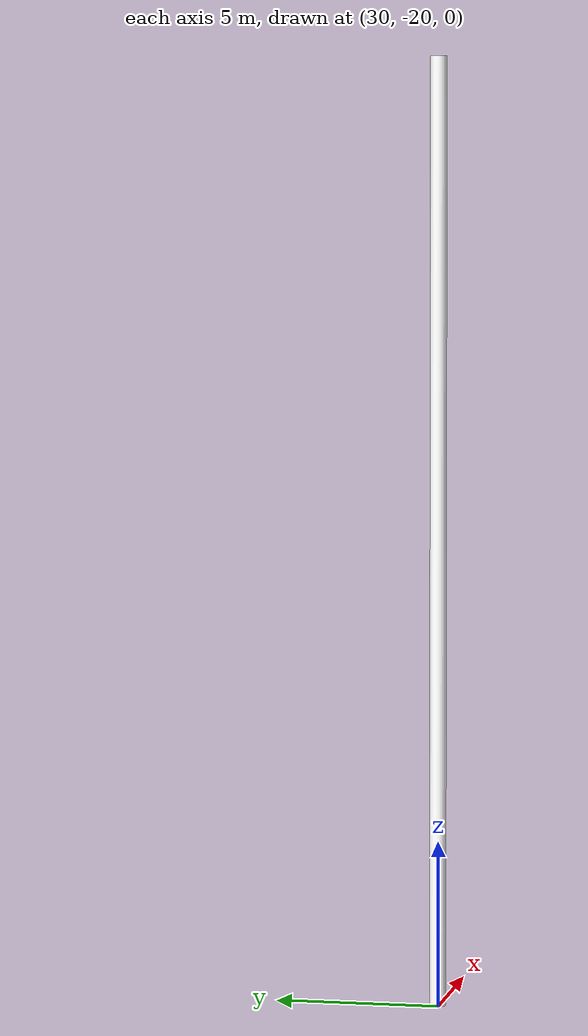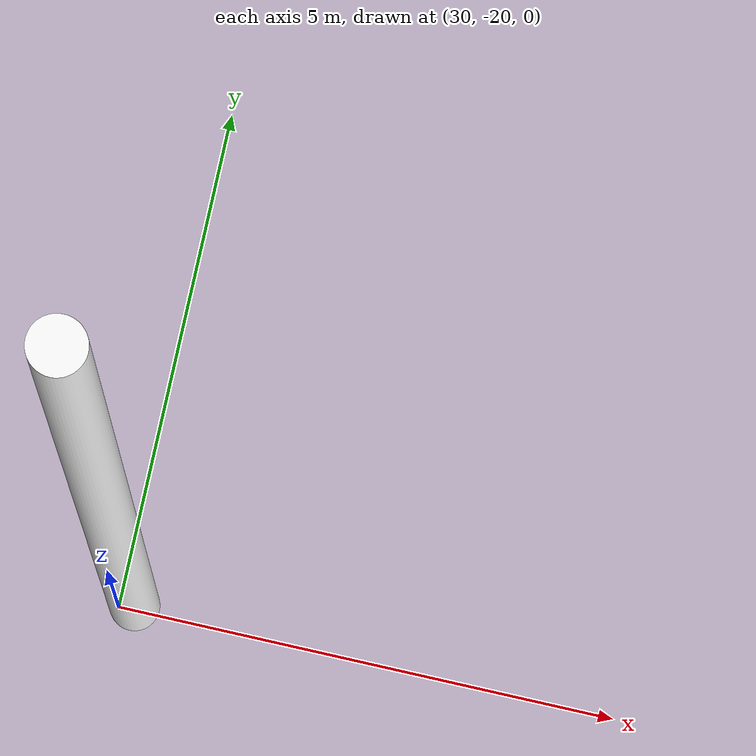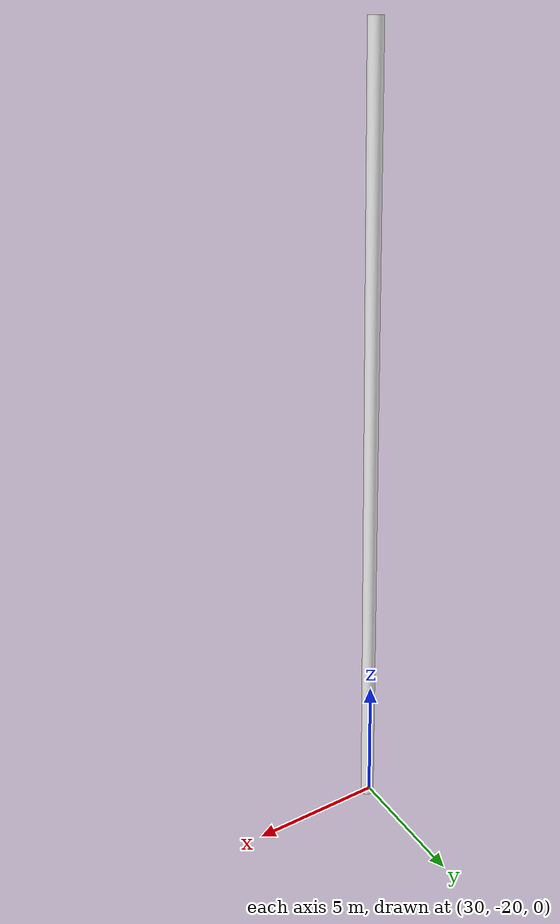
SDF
<?xml version="1.0"?>
<sdf version="1.6">
  <model name="white_pole">
    <static>true</static>

    <link name="link">

      <!-- MESH -->
      <visual name="visual">
        <geometry>
          <mesh>
            <uri>model://white_pole/meshes/pole.stl</uri>
            <scale>1 1 1</scale>
          </mesh>
        </geometry>

        <!-- MATERIAL -->
        <material>
          <!-- White on Ambient Lightning -->
          <ambient>1 1 1 1</ambient>
          <!-- Perfect White on Camera -->
          <diffuse>1 1 1 1</diffuse>
          <!-- Prevents Reflections -->
          <specular>0 0 0 1</specular>
        </material>
      </visual>

      <!-- COLLISION -->
      <collision name="collision">
        <geometry>
          <cylinder>
            <radius>0.15</radius>
            <length>0.02</length>
          </cylinder>
        </geometry>
      </collision>

    </link>
  </model>
</sdf>
